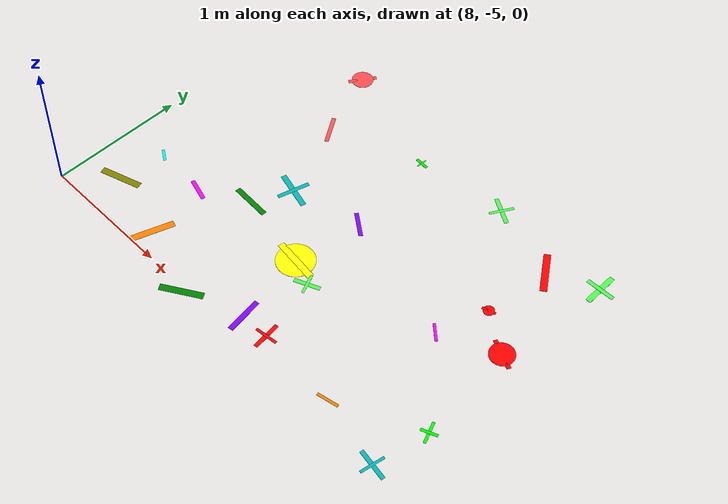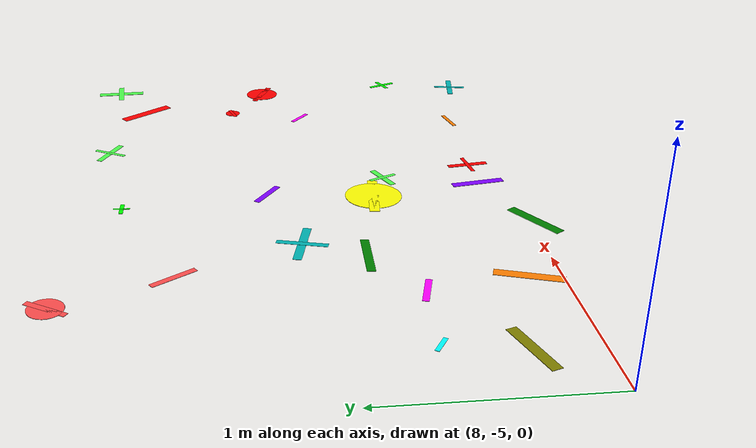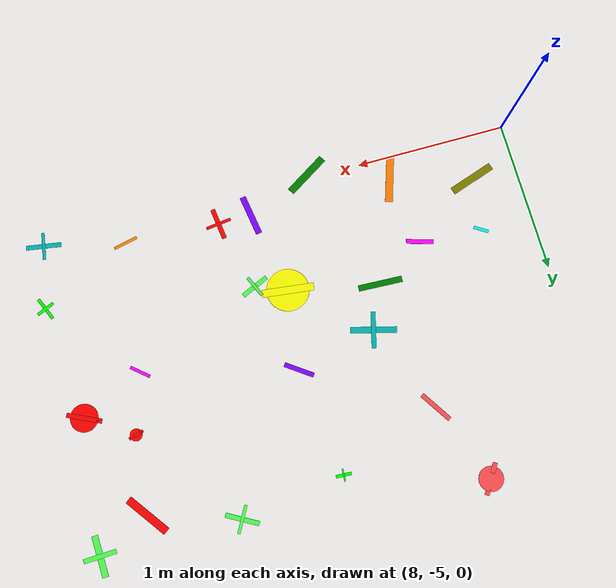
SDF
<sdf version="1.6">
 <world name="default">
  <model name="letter_R_1714">
   <static>true</static>
   <pose>8.30 -4.71 0.005 0 0 3.461</pose>
   <link name="link">
    <visual name="visual">
     <geometry><box><size>0.31 0.05 0.002</size></box></geometry>
     <material>
      <ambient>0.5 0.5 0.0 1</ambient>
      <diffuse>0.5 0.5 0.0 1</diffuse>
      <specular>0.1 0.1 0.1 1</specular>
     </material>
    </visual>
   </link>
  </model>
  <model name="letter_N_1719">
   <static>true</static>
   <pose>8.35 -4.36 0.013 0 0 5.714</pose>
   <link name="link">
    <visual name="visual">
     <geometry><box><size>0.10 0.02 0.002</size></box></geometry>
     <material>
      <ambient>0.0 1.0 1.0 1</ambient>
      <diffuse>0.0 1.0 1.0 1</diffuse>
      <specular>0.1 0.1 0.1 1</specular>
     </material>
    </visual>
   </link>
  </model>
  <model name="letter_D_1795">
   <static>true</static>
   <pose>9.35 -5.03 0.004 0 0 0.560</pose>
   <link name="link">
    <visual name="visual">
     <geometry><box><size>0.31 0.05 0.002</size></box></geometry>
     <material>
      <ambient>0.0 0.5 0.0 1</ambient>
      <diffuse>0.0 0.5 0.0 1</diffuse>
      <specular>0.1 0.1 0.1 1</specular>
     </material>
    </visual>
   </link>
  </model>
  <model name="letter_N_1797">
   <static>true</static>
   <pose>8.83 -4.85 0.012 0 0 4.392</pose>
   <link name="link">
    <visual name="visual">
     <geometry><box><size>0.31 0.05 0.002</size></box></geometry>
     <material>
      <ambient>1.0 0.5 0.0 1</ambient>
      <diffuse>1.0 0.5 0.0 1</diffuse>
      <specular>0.1 0.1 0.1 1</specular>
     </material>
    </visual>
   </link>
  </model>
  <model name="letter_P_1798">
   <static>true</static>
   <pose>8.76 -4.39 0.010 0 0 2.862</pose>
   <link name="link">
    <visual name="visual">
     <geometry><box><size>0.18 0.03 0.002</size></box></geometry>
     <material>
      <ambient>1.0 0.0 1.0 1</ambient>
      <diffuse>1.0 0.0 1.0 1</diffuse>
      <specular>0.1 0.1 0.1 1</specular>
     </material>
    </visual>
   </link>
  </model>
  <model name="letter_W_1799">
   <static>true</static>
   <pose>9.09 -4.19 0.006 0 0 6.238</pose>
   <link name="link">
    <visual name="visual">
     <geometry><box><size>0.29 0.04 0.002</size></box></geometry>
     <material>
      <ambient>0.0 0.5 0.0 1</ambient>
      <diffuse>0.0 0.5 0.0 1</diffuse>
      <specular>0.1 0.1 0.1 1</specular>
     </material>
    </visual>
   </link>
  </model>
  <model name="letter_E_1800">
   <static>true</static>
   <pose>9.22 -3.91 0.009 0 0 6.026</pose>
   <link name="link">
    <visual name="visual">
     <geometry><box><size>0.30 0.04 0.002</size></box></geometry>
     <material>
      <ambient>0.0 0.7 0.7 1</ambient>
      <diffuse>0.0 0.7 0.7 1</diffuse>
      <specular>0.1 0.1 0.1 1</specular>
     </material>
    </visual>
    <visual name="visual2">
     <pose>0 0 0.001 0 0 1.57</pose>
     <geometry><box><size>0.24 0.03 0.001</size></box></geometry>
     <material><ambient>0.0 0.7 0.7 1</ambient><diffuse>0.0 0.7 0.7 1</diffuse></material>
    </visual>
   </link>
  </model>
  <model name="letter_G_1801">
   <static>true</static>
   <pose>8.78 -2.81 0.004 0 0 1.006</pose>
   <link name="link">
    <visual name="visual">
     <geometry><box><size>0.21 0.03 0.002</size></box></geometry>
     <material>
      <ambient>1.0 0.3 0.3 1</ambient>
      <diffuse>1.0 0.3 0.3 1</diffuse>
      <specular>0.1 0.1 0.1 1</specular>
     </material>
    </visual>
    <visual name="visual2">
     <geometry><cylinder><radius>0.08</radius><length>0.002</length></cylinder></geometry>
     <material><ambient>1.0 0.3 0.3 1</ambient><diffuse>1.0 0.3 0.3 1</diffuse></material>
    </visual>
   </link>
  </model>
  <model name="letter_P_1802">
   <static>true</static>
   <pose>8.98 -3.33 0.005 0 0 5.282</pose>
   <link name="link">
    <visual name="visual">
     <geometry><box><size>0.23 0.03 0.002</size></box></geometry>
     <material>
      <ambient>1.0 0.3 0.3 1</ambient>
      <diffuse>1.0 0.3 0.3 1</diffuse>
      <specular>0.1 0.1 0.1 1</specular>
     </material>
    </visual>
   </link>
  </model>
  <model name="letter_H_1877">
   <static>true</static>
   <pose>10.00 -4.86 0.007 0 0 4.836</pose>
   <link name="link">
    <visual name="visual">
     <geometry><box><size>0.21 0.03 0.002</size></box></geometry>
     <material>
      <ambient>1.0 0.0 0.0 1</ambient>
      <diffuse>1.0 0.0 0.0 1</diffuse>
      <specular>0.1 0.1 0.1 1</specular>
     </material>
    </visual>
    <visual name="visual2">
     <pose>0 0 0.001 0 0 1.57</pose>
     <geometry><box><size>0.17 0.02 0.001</size></box></geometry>
     <material><ambient>1.0 0.0 0.0 1</ambient><diffuse>1.0 0.0 0.0 1</diffuse></material>
    </visual>
   </link>
  </model>
  <model name="letter_N_1878">
   <static>true</static>
   <pose>9.78 -4.86 0.007 0 0 1.723</pose>
   <link name="link">
    <visual name="visual">
     <geometry><box><size>0.27 0.04 0.002</size></box></geometry>
     <material>
      <ambient>0.5 0.0 1.0 1</ambient>
      <diffuse>0.5 0.0 1.0 1</diffuse>
      <specular>0.1 0.1 0.1 1</specular>
     </material>
    </visual>
   </link>
  </model>
  <model name="letter_N_1879">
   <static>true</static>
   <pose>9.75 -3.79 0.008 0 0 5.663</pose>
   <link name="link">
    <visual name="visual">
     <geometry><box><size>0.20 0.03 0.002</size></box></geometry>
     <material>
      <ambient>0.5 0.0 1.0 1</ambient>
      <diffuse>0.5 0.0 1.0 1</diffuse>
      <specular>0.1 0.1 0.1 1</specular>
     </material>
    </visual>
   </link>
  </model>
  <model name="letter_E_1880">
   <static>true</static>
   <pose>9.88 -4.39 0.010 0 0 0.419</pose>
   <link name="link">
    <visual name="visual">
     <geometry><box><size>0.19 0.03 0.002</size></box></geometry>
     <material>
      <ambient>0.3 1.0 0.3 1</ambient>
      <diffuse>0.3 1.0 0.3 1</diffuse>
      <specular>0.1 0.1 0.1 1</specular>
     </material>
    </visual>
    <visual name="visual2">
     <pose>0 0 0.001 0 0 1.57</pose>
     <geometry><box><size>0.15 0.02 0.001</size></box></geometry>
     <material><ambient>0.3 1.0 0.3 1</ambient><diffuse>0.3 1.0 0.3 1</diffuse></material>
    </visual>
   </link>
  </model>
  <model name="letter_O_1881">
   <static>true</static>
   <pose>9.68 -4.31 0.008 0 0 3.021</pose>
   <link name="link">
    <visual name="visual">
     <geometry><box><size>0.34 0.05 0.002</size></box></geometry>
     <material>
      <ambient>1.0 1.0 0.0 1</ambient>
      <diffuse>1.0 1.0 0.0 1</diffuse>
      <specular>0.1 0.1 0.1 1</specular>
     </material>
    </visual>
    <visual name="visual2">
     <geometry><cylinder><radius>0.14</radius><length>0.002</length></cylinder></geometry>
     <material><ambient>1.0 1.0 0.0 1</ambient><diffuse>1.0 1.0 0.0 1</diffuse></material>
    </visual>
   </link>
  </model>
  <model name="letter_L_1882">
   <static>true</static>
   <pose>9.66 -3.08 0.006 0 0 3.083</pose>
   <link name="link">
    <visual name="visual">
     <geometry><box><size>0.10 0.02 0.002</size></box></geometry>
     <material>
      <ambient>0.0 1.0 0.0 1</ambient>
      <diffuse>0.0 1.0 0.0 1</diffuse>
      <specular>0.1 0.1 0.1 1</specular>
     </material>
    </visual>
    <visual name="visual2">
     <pose>0 0 0.001 0 0 1.57</pose>
     <geometry><box><size>0.08 0.01 0.001</size></box></geometry>
     <material><ambient>0.0 1.0 0.0 1</ambient><diffuse>0.0 1.0 0.0 1</diffuse></material>
    </visual>
   </link>
  </model>
  <model name="letter_L_1883">
   <static>true</static>
   <pose>10.34 -2.99 0.006 0 0 2.631</pose>
   <link name="link">
    <visual name="visual">
     <geometry><box><size>0.22 0.03 0.002</size></box></geometry>
     <material>
      <ambient>0.3 1.0 0.3 1</ambient>
      <diffuse>0.3 1.0 0.3 1</diffuse>
      <specular>0.1 0.1 0.1 1</specular>
     </material>
    </visual>
    <visual name="visual2">
     <pose>0 0 0.001 0 0 1.57</pose>
     <geometry><box><size>0.18 0.02 0.001</size></box></geometry>
     <material><ambient>0.3 1.0 0.3 1</ambient><diffuse>0.3 1.0 0.3 1</diffuse></material>
    </visual>
   </link>
  </model>
  <model name="letter_L_1956">
   <static>true</static>
   <pose>11.22 -4.61 0.010 0 0 5.112</pose>
   <link name="link">
    <visual name="visual">
     <geometry><box><size>0.16 0.02 0.002</size></box></geometry>
     <material>
      <ambient>0.0 1.0 0.0 1</ambient>
      <diffuse>0.0 1.0 0.0 1</diffuse>
      <specular>0.1 0.1 0.1 1</specular>
     </material>
    </visual>
    <visual name="visual2">
     <pose>0 0 0.001 0 0 1.57</pose>
     <geometry><box><size>0.12 0.02 0.001</size></box></geometry>
     <material><ambient>0.0 1.0 0.0 1</ambient><diffuse>0.0 1.0 0.0 1</diffuse></material>
    </visual>
   </link>
  </model>
  <model name="letter_E_1957">
   <static>true</static>
   <pose>11.14 -5.02 0.011 0 0 2.980</pose>
   <link name="link">
    <visual name="visual">
     <geometry><box><size>0.23 0.03 0.002</size></box></geometry>
     <material>
      <ambient>0.0 0.7 0.7 1</ambient>
      <diffuse>0.0 0.7 0.7 1</diffuse>
      <specular>0.1 0.1 0.1 1</specular>
     </material>
    </visual>
    <visual name="visual2">
     <pose>0 0 0.001 0 0 1.57</pose>
     <geometry><box><size>0.18 0.02 0.001</size></box></geometry>
     <material><ambient>0.0 0.7 0.7 1</ambient><diffuse>0.0 0.7 0.7 1</diffuse></material>
    </visual>
   </link>
  </model>
  <model name="letter_K_1958">
   <static>true</static>
   <pose>10.62 -4.90 0.004 0 0 0.212</pose>
   <link name="link">
    <visual name="visual">
     <geometry><box><size>0.16 0.02 0.002</size></box></geometry>
     <material>
      <ambient>1.0 0.5 0.0 1</ambient>
      <diffuse>1.0 0.5 0.0 1</diffuse>
      <specular>0.1 0.1 0.1 1</specular>
     </material>
    </visual>
   </link>
  </model>
  <model name="letter_K_1959">
   <static>true</static>
   <pose>10.73 -4.05 0.011 0 0 5.574</pose>
   <link name="link">
    <visual name="visual">
     <geometry><box><size>0.14 0.02 0.002</size></box></geometry>
     <material>
      <ambient>1.0 0.0 1.0 1</ambient>
      <diffuse>1.0 0.0 1.0 1</diffuse>
      <specular>0.1 0.1 0.1 1</specular>
     </material>
    </visual>
   </link>
  </model>
  <model name="letter_G_1960">
   <static>true</static>
   <pose>10.85 -3.67 0.006 0 0 3.428</pose>
   <link name="link">
    <visual name="visual">
     <geometry><box><size>0.10 0.02 0.002</size></box></geometry>
     <material>
      <ambient>1.0 0.0 0.0 1</ambient>
      <diffuse>1.0 0.0 0.0 1</diffuse>
      <specular>0.1 0.1 0.1 1</specular>
     </material>
    </visual>
    <visual name="visual2">
     <geometry><cylinder><radius>0.04</radius><length>0.002</length></cylinder></geometry>
     <material><ambient>1.0 0.0 0.0 1</ambient><diffuse>1.0 0.0 0.0 1</diffuse></material>
    </visual>
   </link>
  </model>
  <model name="letter_C_1961">
   <static>true</static>
   <pose>11.14 -3.86 0.008 0 0 5.847</pose>
   <link name="link">
    <visual name="visual">
     <geometry><box><size>0.23 0.03 0.002</size></box></geometry>
     <material>
      <ambient>1.0 0.0 0.0 1</ambient>
      <diffuse>1.0 0.0 0.0 1</diffuse>
      <specular>0.1 0.1 0.1 1</specular>
     </material>
    </visual>
    <visual name="visual2">
     <geometry><cylinder><radius>0.09</radius><length>0.002</length></cylinder></geometry>
     <material><ambient>1.0 0.0 0.0 1</ambient><diffuse>1.0 0.0 0.0 1</diffuse></material>
    </visual>
   </link>
  </model>
  <model name="letter_X_1962">
   <static>true</static>
   <pose>10.90 -3.17 0.007 0 0 2.202</pose>
   <link name="link">
    <visual name="visual">
     <geometry><box><size>0.31 0.05 0.002</size></box></geometry>
     <material>
      <ambient>1.0 0.0 0.0 1</ambient>
      <diffuse>1.0 0.0 0.0 1</diffuse>
      <specular>0.1 0.1 0.1 1</specular>
     </material>
    </visual>
   </link>
  </model>
  <model name="letter_E_1964">
   <static>true</static>
   <pose>11.24 -3.01 0.005 0 0 4.749</pose>
   <link name="link">
    <visual name="visual">
     <geometry><box><size>0.26 0.04 0.002</size></box></geometry>
     <material>
      <ambient>0.3 1.0 0.3 1</ambient>
      <diffuse>0.3 1.0 0.3 1</diffuse>
      <specular>0.1 0.1 0.1 1</specular>
     </material>
    </visual>
    <visual name="visual2">
     <pose>0 0 0.001 0 0 1.57</pose>
     <geometry><box><size>0.21 0.03 0.001</size></box></geometry>
     <material><ambient>0.3 1.0 0.3 1</ambient><diffuse>0.3 1.0 0.3 1</diffuse></material>
    </visual>
   </link>
  </model>
 </world>
</sdf>
